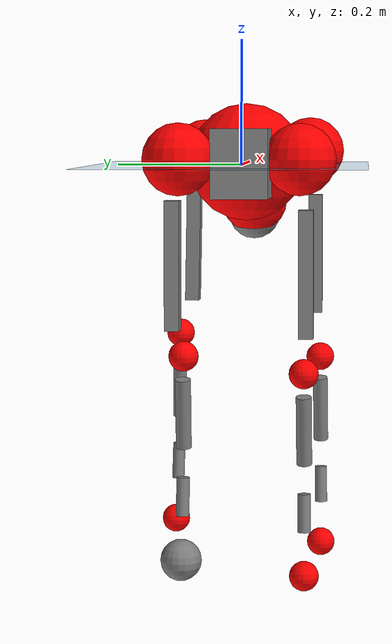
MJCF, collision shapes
<mujoco model="go2">
  <compiler angle="radian" assetdir="assets" balanceinertia="true" inertiafromgeom="false"/>

  <option timestep="0.005" density="1.2" viscosity="2e-05"/>

  <size nkey="1"/>

  <visual>
    <quality shadowsize="8192"/>
    <map shadowclip="0.5"/>
  </visual>

  <default>
    <default class="/">
      <geom contype="0" conaffinity="0" group="1" solref="-1000 -80"/>
      <site size="0.01 0.005 0.005" group="5"/>
      <general forcelimited="true" biastype="affine" gainprm="20" biasprm="0 -20 -0.5"/>
      <default class="go2">
        <joint armature="0.01" damping="0.01" frictionloss="0.2"/>
        <geom condim="1" margin="0.001"/>
        <default class="visual">
          <geom type="mesh" group="2"/>
        </default>
        <default class="collision">
          <geom group="3"/>
          <default class="foot">
            <geom size="0.022 0 0" condim="6" priority="1" friction="0.8 0.02 0.01" solimp="0.015 1 0.022"/>
          </default>
        </default>
        <default class="reward_collision_sphere">
          <geom group="5" rgba="1 0 0 1"/>
        </default>
      </default>
    </default>
  </default>

  <asset>
    <texture type="skybox" colorspace="auto" name="//unnamed_texture_0" builtin="gradient" rgb1="0.95 0.95 0.95" rgb2="0.95 0.95 0.95" width="100" height="600"/>
    <texture type="2d" colorspace="auto" name="texplane" builtin="checker" rgb1="0.345 0.575 0.748" rgb2="0.345 0.575 0.748" markrgb="1 1 1" width="512" height="512"/>
    <material name="MatPlane" class="/" texture="texplane" texuniform="true" texrepeat="2 2" specular="0.9"/>
    <material name="metal" class="/" rgba="0.9 0.95 0.95 1"/>
    <material name="black" class="/" rgba="0 0 0 1"/>
    <material name="white" class="/"/>
    <material name="gray" class="/" rgba="0.671705 0.692426 0.77427 1"/>
    <mesh name="base_0" class="/" file="base_0.obj"/>
    <mesh name="base_1" class="/" file="base_1.obj"/>
    <mesh name="base_2" class="/" file="base_2.obj"/>
    <mesh name="base_3" class="/" file="base_3.obj"/>
    <mesh name="base_4" class="/" file="base_4.obj"/>
    <mesh name="hip_0" class="/" file="hip_0.obj"/>
    <mesh name="hip_1" class="/" file="hip_1.obj"/>
    <mesh name="thigh_0" class="/" file="thigh_0.obj"/>
    <mesh name="thigh_1" class="/" file="thigh_1.obj"/>
    <mesh name="thigh_mirror_0" class="/" file="thigh_mirror_0.obj"/>
    <mesh name="thigh_mirror_1" class="/" file="thigh_mirror_1.obj"/>
    <mesh name="calf_0" class="/" file="calf_0.obj"/>
    <mesh name="calf_1" class="/" file="calf_1.obj"/>
    <mesh name="calf_mirror_0" class="/" file="calf_mirror_0.obj"/>
    <mesh name="calf_mirror_1" class="/" file="calf_mirror_1.obj"/>
    <mesh name="foot" class="/" file="foot.obj"/>
  </asset>

  <worldbody>
    <geom name="floor" class="/" size="100 100 0.125" type="plane" group="0" material="MatPlane"/>
    <light name="toplight_shadow" class="/" pos="0 0 5" dir="0.0990148 0.0990148 -0.990148" type="directional" ambient="0.04 0.04 0.04" diffuse="0.55 0.55 0.55" specular="0.12 0.12 0.12"/>
    <light name="toplight_fill" class="/" pos="0 0 5" dir="0.0990148 0.0990148 -0.990148" type="directional" castshadow="false" ambient="0.04 0.04 0.04" diffuse="0.3 0.3 0.3" specular="0.08 0.08 0.08"/>
    <body name="trunk" childclass="go2" pos="-0.0165554 -0.00980285 0.00483016" quat="0.999993 -0.00280756 0.00262372 -0.000318802">
      <inertial pos="0.0125994 0.0048109 -0.00790324" quat="0.0478993 0.717852 -0.032888 0.693767" mass="5.51932" diaginertia="0.00618988 0.00948823 0.177841"/>
      <joint name="//unnamed_joint_0" type="free" armature="0" damping="0" frictionloss="0"/>
      <geom name="//unnamed_geom_1" class="visual" material="black" mesh="base_0"/>
      <geom name="//unnamed_geom_2" class="visual" material="black" mesh="base_1"/>
      <geom name="//unnamed_geom_3" class="visual" material="black" mesh="base_2"/>
      <geom name="//unnamed_geom_4" class="visual" material="white" mesh="base_3"/>
      <geom name="//unnamed_geom_5" class="visual" material="gray" mesh="base_4"/>
      <geom name="trunk_1" class="collision" size="0.175493 0.0436166 0.0531796" type="box"/>
      <geom name="trunk_2" class="collision" size="0.0466488 0.0419839" pos="0.176295 0 0.0150276" type="cylinder"/>
      <geom name="trunk_3" class="collision" size="0.0438498" pos="0.181244 0 -0.0901657"/>
      <geom name="//unnamed_geom_9" class="reward_collision_sphere" size="0.0932975"/>
      <geom name="//unnamed_geom_10" class="reward_collision_sphere" size="0.0559785" pos="0.173202 0 -0.0676243"/>
      <site name="imu" pos="-0.0567331 0.0302207 0.15394" size="0.00932975"/>
      <camera name="track" pos="0 -1.35517 0" quat="0.707107 0.707107 0 0" mode="trackcom"/>
      <camera name="ego_camera" pos="0.192997 0 0.0676243" quat="-0.5 -0.5 0.5 0.5"/>
      <body name="FL_hip" pos="0.115059 0.0293719 0.0121834" quat="0.999969 0.00661687 0.00245512 -0.00338525">
        <inertial pos="0.0141534 0.0113304 0.00282087" quat="0.504161 0.504345 0.500987 0.490378" mass="0.631084" diaginertia="9.16312e-05 0.000104997 0.00414147"/>
        <joint name="FL_hip_joint" pos="0 0 0" axis="0.99528 -0.07365 -0.0631993" stiffness="0.0835155" range="-0.948875 1.04137" armature="0.0171121" damping="0" frictionloss="0.0833467"/>
        <geom name="//unnamed_geom_11" class="visual" material="metal" mesh="hip_0"/>
        <geom name="//unnamed_geom_12" class="visual" material="gray" mesh="hip_1"/>
        <geom name="//unnamed_geom_13" class="collision" size="0.0429169 0.0186595" pos="0 0.0542069 0" quat="0.707107 0.707107 0 0" type="cylinder"/>
        <geom name="//unnamed_geom_14" class="reward_collision_sphere" size="0.0559785" pos="0 0.047431 0"/>
        <body name="FL_thigh" pos="0.0129612 0.0665809 0.011698" quat="0.999987 0.00444946 0.00256817 -0.000622251">
          <inertial pos="0.0023774 -0.0148481 -0.0305498" quat="0.814899 0.0438915 -0.0406987 0.576504" mass="0.985968" diaginertia="0.000572381 0.0009374 0.00785523"/>
          <joint name="FL_thigh_joint" pos="0 0 0" axis="-0.000130757 0.998327 0.0578183" stiffness="0.0633316" range="-1.77596 3.51178" armature="0.00136654" damping="0.0618444" frictionloss="0.299733"/>
          <geom name="//unnamed_geom_15" class="visual" material="metal" mesh="thigh_0"/>
          <geom name="//unnamed_geom_16" class="visual" material="gray" mesh="thigh_1"/>
          <geom name="//unnamed_geom_17" class="collision" size="0.0993619 0.0114289 0.0158606" pos="0 0 -0.160044" quat="0.707107 0 0.707107 0" type="box"/>
          <body name="FL_calf" pos="-0.0037598 0.0189793 -0.315882" quat="0.999976 0.00455272 -0.000679216 -0.00518848">
            <inertial pos="-0.00704041 0.00713954 -0.210312" quat="0.761556 -0.0145279 0.0349542 0.646992" mass="0.13955" diaginertia="0.000134518 0.000170968 0.000411113"/>
            <joint name="FL_calf_joint" pos="0 0 0" axis="-0.0120916 0.998962 -0.0439163" range="-2.78314 -0.710437" armature="0.00726307" damping="0.0708762" frictionloss="0.137147"/>
            <geom name="//unnamed_geom_18" class="visual" material="gray" mesh="calf_0"/>
            <geom name="//unnamed_geom_19" class="visual" material="black" mesh="calf_1"/>
            <geom name="FL_calf0" class="collision" size="0.0111957 0.0559785" pos="0.00494864 0 -0.0901657" quat="0.994493 0 -0.104807 0" type="cylinder"/>
            <geom name="//unnamed_geom_21" class="collision" size="0.0102627 0.0303217" pos="0.0123716 0 -0.222409" quat="0.999688 0 0.0249974 0" type="cylinder"/>
            <geom name="//unnamed_geom_22" class="visual" pos="0 0 -0.320088" quat="1 0 0 0" material="black" mesh="foot"/>
            <geom name="FL_foot" class="foot" size="0.00985771" pos="-0.00123716 0 -0.320088"/>
            <geom name="//unnamed_geom_24" class="reward_collision_sphere" size="0.0233244"/>
            <geom name="//unnamed_geom_25" class="reward_collision_sphere" size="0.0233244" pos="-0.00123716 0 -0.320088"/>
            <site name="FL_foot" class="foot" pos="-0.00123716 0 -0.320088" size="0.00932975"/>
          </body>
        </body>
      </body>
      <body name="FR_hip" pos="0.138341 -0.0497482 0.0153077" quat="0.999998 0.0004024 -0.000540408 0.00208153">
        <inertial pos="-0.0216599 -0.00946852 0.0169289" quat="0.543325 0.500593 0.455474 0.496737" mass="0.395161" diaginertia="6.57965e-05 7.70934e-05 0.00285746"/>
        <joint name="FR_hip_joint" pos="0 0 0" axis="0.99667 0.0595123 -0.0557508" range="-0.701066 0.929834" armature="0.0089022" damping="0" frictionloss="0.332165"/>
        <geom name="//unnamed_geom_26" class="visual" pos="0 -7.18859e-09 -3.08333e-07" quat="4.63268e-05 1 0 0" material="metal" mesh="hip_0"/>
        <geom name="//unnamed_geom_27" class="visual" pos="0 -1.16536e-08 7.62626e-07" quat="4.63268e-05 1 0 0" material="gray" mesh="hip_1"/>
        <geom name="//unnamed_geom_28" class="collision" size="0.0429169 0.0186595" pos="0 -0.0542069 0" quat="0.707107 0.707107 0 0" type="cylinder"/>
        <geom name="//unnamed_geom_29" class="reward_collision_sphere" size="0.0559785" pos="0 -0.047431 0"/>
        <body name="FR_thigh" pos="0.00237509 -0.0561639 -0.0122962" quat="0.999999 0.000327617 -0.000311786 -0.00130015">
          <inertial pos="0.00906911 -0.00437659 -0.0572752" quat="0.556788 -0.0216471 0.0786512 0.826639" mass="0.834873" diaginertia="0.000524262 0.000680869 0.00604538"/>
          <joint name="FR_thigh_joint" pos="0 0 0" axis="-0.0403694 -0.998946 0.0218572" range="-3.37458 1.34593" armature="0.013611" damping="0.0727515" frictionloss="0.121833"/>
          <geom name="//unnamed_geom_30" class="visual" material="metal" mesh="thigh_mirror_0"/>
          <geom name="//unnamed_geom_31" class="visual" material="gray" mesh="thigh_mirror_1"/>
          <geom name="//unnamed_geom_32" class="collision" size="0.0993619 0.0114289 0.0158606" pos="0 0 -0.160044" quat="0.707107 0 0.707107 0" type="box"/>
          <body name="FR_calf" pos="0.00194766 -0.00842888 -0.335869" quat="0.999958 -0.00278896 0.00673441 -0.00563043">
            <inertial pos="-0.0157132 0.0135202 -0.228101" quat="0.726927 -0.00137922 0.00386229 0.686702" mass="0.252788" diaginertia="0.000124923 0.000180476 0.000337966"/>
            <joint name="FR_calf_joint" pos="0 0 0" axis="0.040469 -0.999078 0.0143631" range="1.18968 2.81685" armature="0.00619686" damping="0" frictionloss="0.034293"/>
            <geom name="//unnamed_geom_33" class="visual" material="gray" mesh="calf_mirror_0"/>
            <geom name="//unnamed_geom_34" class="visual" material="black" mesh="calf_mirror_1"/>
            <geom name="FR_calf0" class="collision" size="0.0121287 0.0559785" pos="0.00618579 0 -0.0901657" quat="0.995004 0 -0.0998334 0" type="cylinder"/>
            <geom name="//unnamed_geom_36" class="collision" size="0.0102627 0.0303217" pos="0.0123716 0 -0.222409" quat="0.999688 0 0.0249974 0" type="cylinder"/>
            <geom name="//unnamed_geom_37" class="visual" pos="0 0 -0.320088" quat="1 0 0 0" material="black" mesh="foot"/>
            <geom name="FR_foot" class="foot" size="0.0203154" pos="-0.00123716 0 -0.320088"/>
            <geom name="//unnamed_geom_39" class="reward_collision_sphere" size="0.0233244"/>
            <geom name="//unnamed_geom_40" class="reward_collision_sphere" size="0.0233244" pos="-0.00123716 0 -0.320088"/>
            <site name="FR_foot" class="foot" pos="-0.00123716 0 -0.320088" size="0.00932975"/>
          </body>
        </body>
      </body>
      <body name="RL_hip" pos="-0.139506 0.0477813 0.00683617" quat="0.999991 0.00108304 -0.000810505 0.00398686">
        <inertial pos="-0.0143615 0.0205899 -0.00232299" quat="0.4726 0.56482 0.487166 0.469358" mass="0.645973" diaginertia="9.08942e-05 8.58656e-05 0.00454723"/>
        <joint name="RL_hip_joint" pos="0 0 0" axis="-0.998621 0.0516141 0.00955603" range="-1.3202 0.852841" armature="0.008973" damping="0.00547673" frictionloss="0.272388"/>
        <geom name="//unnamed_geom_41" class="visual" pos="7.70263e-09 0 1.50989e-06" quat="4.63268e-05 0 1 0" material="metal" mesh="hip_0"/>
        <geom name="//unnamed_geom_42" class="visual" pos="1.24869e-08 0 1.33906e-06" quat="4.63268e-05 0 1 0" material="gray" mesh="hip_1"/>
        <geom name="//unnamed_geom_43" class="collision" size="0.0429169 0.0186595" pos="0 0.0542069 0" quat="0.707107 0.707107 0 0" type="cylinder"/>
        <geom name="//unnamed_geom_44" class="reward_collision_sphere" size="0.0559785" pos="0 0.047431 0"/>
        <body name="RL_thigh" pos="-0.0117991 0.0550222 -0.00137623" quat="0.999989 0.00189608 -0.0014313 -0.00413498">
          <inertial pos="-0.00957777 -0.0331496 -0.0535565" quat="0.78733 0.0791126 -0.0286576 0.610763" mass="0.701669" diaginertia="0.000519082 0.000648812 0.00687254"/>
          <joint name="RL_thigh_joint" pos="0 0 0" axis="0.0840401 0.996407 -0.0104864" stiffness="0.070096" range="-0.796279 4.28121" armature="0.00177146" damping="0" frictionloss="0.0401751"/>
          <geom name="//unnamed_geom_45" class="visual" material="metal" mesh="thigh_0"/>
          <geom name="//unnamed_geom_46" class="visual" material="gray" mesh="thigh_1"/>
          <geom name="//unnamed_geom_47" class="collision" size="0.0993619 0.0114289 0.0158606" pos="0 0 -0.160044" quat="0.707107 0 0.707107 0" type="box"/>
          <body name="RL_calf" pos="0.0127315 -0.015295 -0.301377" quat="0.999955 0.0061221 0.00501442 -0.00517276">
            <inertial pos="-0.00146389 0.000517691 -0.232245" quat="0.740846 -0.00775 0.032731 0.670832" mass="0.229574" diaginertia="0.000136413 0.000228854 0.000375278"/>
            <joint name="RL_calf_joint" pos="0 0 0" axis="-0.042817 0.998798 -0.0238701" stiffness="0.0537623" range="-2.87726 -0.579304" armature="0.00601161" damping="0" frictionloss="0.324748"/>
            <geom name="//unnamed_geom_48" class="visual" material="gray" mesh="calf_0"/>
            <geom name="//unnamed_geom_49" class="visual" material="black" mesh="calf_1"/>
            <geom name="RL_calf0" class="collision" size="0.0121287 0.0559785" pos="0.00618579 0 -0.0901657" quat="0.995004 0 -0.0998334 0" type="cylinder"/>
            <geom name="//unnamed_geom_51" class="collision" size="0.0102627 0.0303217" pos="0.0123716 0 -0.222409" quat="0.999688 0 0.0249974 0" type="cylinder"/>
            <geom name="//unnamed_geom_52" class="visual" pos="0 0 -0.320088" quat="1 0 0 0" material="black" mesh="foot"/>
            <geom name="RL_foot" class="foot" size="0.032292" pos="-0.00123716 0 -0.320088"/>
            <geom name="//unnamed_geom_54" class="reward_collision_sphere" size="0.0233244"/>
            <geom name="//unnamed_geom_55" class="reward_collision_sphere" size="0.0233244" pos="-0.00123716 0 -0.320088"/>
            <site name="RL_foot" class="foot" pos="-0.00123716 0 -0.320088" size="0.00932975"/>
          </body>
        </body>
      </body>
      <body name="RR_hip" pos="-0.101877 -0.0417213 0.00563127" quat="0.999989 0.00414122 -0.00026287 -0.00208767">
        <inertial pos="-0.0107412 -0.0129191 -0.00253761" quat="0.437766 0.47522 0.513447 0.564712" mass="0.588527" diaginertia="7.365e-05 7.71805e-05 0.00335383"/>
        <joint name="RR_hip_joint" pos="0 0 0" axis="-0.995812 0.0335066 -0.0850686" stiffness="0.0324398" range="-1.08155 0.868936" armature="0.0143599" damping="0" frictionloss="0.15372"/>
        <geom name="//unnamed_geom_56" class="visual" pos="-7.70058e-09 -7.18859e-09 1.81823e-06" quat="2.14617e-09 4.63268e-05 4.63268e-05 -1" material="metal" mesh="hip_0"/>
        <geom name="//unnamed_geom_57" class="visual" pos="-1.24919e-08 -1.16536e-08 5.76433e-07" quat="2.14617e-09 4.63268e-05 4.63268e-05 -1" material="gray" mesh="hip_1"/>
        <geom name="//unnamed_geom_58" class="collision" size="0.0429169 0.0186595" pos="0 -0.0542069 0" quat="0.707107 0.707107 0 0" type="cylinder"/>
        <geom name="//unnamed_geom_59" class="reward_collision_sphere" size="0.0559785" pos="0 -0.047431 0"/>
        <body name="RR_thigh" pos="-0.0055961 -0.0568165 -0.0165234" quat="0.999988 -0.00454208 0.0007321 0.001406">
          <inertial pos="-0.0102214 0.0196433 -0.057723" quat="0.532958 -0.043316 0.175224 0.826666" mass="0.986558" diaginertia="0.000544943 0.000646772 0.00492065"/>
          <joint name="RR_thigh_joint" pos="0 0 0" axis="0.0137279 -0.999203 -0.0374729" stiffness="0.0694381" range="-4.60264 0.337519" armature="0.00281508" damping="0.0827668" frictionloss="0.291139"/>
          <geom name="//unnamed_geom_60" class="visual" material="metal" mesh="thigh_mirror_0"/>
          <geom name="//unnamed_geom_61" class="visual" material="gray" mesh="thigh_mirror_1"/>
          <geom name="//unnamed_geom_62" class="collision" size="0.0993619 0.0114289 0.0158606" pos="0 0 -0.160044" quat="0.707107 0 0.707107 0" type="box"/>
          <body name="RR_calf" pos="-0.00120136 0.00353963 -0.315029" quat="0.999999 2.33378e-05 0.000348774 -0.00150923">
            <inertial pos="0.0202799 0.0188963 -0.230139" quat="0.691225 -0.0139868 0.0136963 0.722375" mass="0.167997" diaginertia="0.00016791 0.000178304 0.000423645"/>
            <joint name="RR_calf_joint" pos="0 0 0" axis="0.00923422 -0.999062 -0.0422977" stiffness="0.0318228" range="1.02471 2.36972" armature="0.00859504" damping="0" frictionloss="0.0196224"/>
            <geom name="//unnamed_geom_63" class="visual" material="gray" mesh="calf_mirror_0"/>
            <geom name="//unnamed_geom_64" class="visual" material="black" mesh="calf_mirror_1"/>
            <geom name="RR_calf0" class="collision" size="0.0121287 0.0559785" pos="0.00618579 0 -0.0901657" quat="0.995004 0 -0.0998334 0" type="cylinder"/>
            <geom name="//unnamed_geom_66" class="collision" size="0.0102627 0.0303217" pos="0.0123716 0 -0.222409" quat="0.999688 0 0.0249974 0" type="cylinder"/>
            <geom name="//unnamed_geom_67" class="visual" pos="0 0 -0.320088" quat="1 0 0 0" material="black" mesh="foot"/>
            <geom name="RR_foot" class="foot" size="0.00715428" pos="-0.00123716 0 -0.320088"/>
            <geom name="//unnamed_geom_69" class="reward_collision_sphere" size="0.0233244"/>
            <geom name="//unnamed_geom_70" class="reward_collision_sphere" size="0.0233244" pos="-0.00123716 0 -0.320088"/>
            <site name="RR_foot" class="foot" pos="-0.00123716 0 -0.320088" size="0.00932975"/>
          </body>
        </body>
      </body>
    </body>
  </worldbody>

  <contact>
    <pair class="/" geom1="floor" geom2="FL_foot" name="//unnamed_contact_0"/>
    <pair class="/" geom1="floor" geom2="FR_foot" name="//unnamed_contact_1"/>
    <pair class="/" geom1="floor" geom2="RL_foot" name="//unnamed_contact_2"/>
    <pair class="/" geom1="floor" geom2="RR_foot" name="//unnamed_contact_3"/>
  </contact>

  <actuator>
    <general name="FL_hip" class="/" joint="FL_hip_joint" forcerange="-21.6944 21.6944" gainprm="17.805" biasprm="0 -17.805 -0.364795"/>
    <general name="FL_thigh" class="/" joint="FL_thigh_joint" forcerange="-35.0976 35.0976" gainprm="17.805" biasprm="0 -17.805 -0.364795"/>
    <general name="FL_calf" class="/" joint="FL_calf_joint" forcerange="-26.0716 26.0716" gainprm="17.805" biasprm="0 -17.805 -0.364795"/>
    <general name="FR_hip" class="/" joint="FR_hip_joint" forcerange="-21.0609 21.0609" gainprm="17.805" biasprm="0 -17.805 -0.364795"/>
    <general name="FR_thigh" class="/" joint="FR_thigh_joint" forcerange="-17.3039 17.3039" gainprm="17.805" biasprm="0 -17.805 -0.364795"/>
    <general name="FR_calf" class="/" joint="FR_calf_joint" forcerange="-22.7002 22.7002" gainprm="17.805" biasprm="0 -17.805 -0.364795"/>
    <general name="RL_hip" class="/" joint="RL_hip_joint" forcerange="-21.2376 21.2376" gainprm="17.805" biasprm="0 -17.805 -0.364795"/>
    <general name="RL_thigh" class="/" joint="RL_thigh_joint" forcerange="-11.5521 11.5521" gainprm="17.805" biasprm="0 -17.805 -0.364795"/>
    <general name="RL_calf" class="/" joint="RL_calf_joint" forcerange="-61.3953 61.3953" gainprm="17.805" biasprm="0 -17.805 -0.364795"/>
    <general name="RR_hip" class="/" joint="RR_hip_joint" forcerange="-25.9198 25.9198" gainprm="17.805" biasprm="0 -17.805 -0.364795"/>
    <general name="RR_thigh" class="/" joint="RR_thigh_joint" forcerange="-14.9186 14.9186" gainprm="17.805" biasprm="0 -17.805 -0.364795"/>
    <general name="RR_calf" class="/" joint="RR_calf_joint" forcerange="-72.464 72.464" gainprm="17.805" biasprm="0 -17.805 -0.364795"/>
  </actuator>

  <sensor>
    <gyro site="imu" name="imu_angular_velocity"/>
    <velocimeter site="imu" name="imu_linear_velocity"/>
    <framelinvel objtype="site" objname="FL_foot" name="FL_foot_global_linear_velocity"/>
    <framelinvel objtype="site" objname="FR_foot" name="FR_foot_global_linear_velocity"/>
    <framelinvel objtype="site" objname="RL_foot" name="RL_foot_global_linear_velocity"/>
    <framelinvel objtype="site" objname="RR_foot" name="RR_foot_global_linear_velocity"/>
  </sensor>

  <keyframe>
    <key name="home" qpos="0 0 0.325 1 0 0 0 0.1 0.8 -1.5 -0.1 -0.8 1.5 -0.1 0.8 -1.5 0.1 -0.8 1.5"/>
  </keyframe>
</mujoco>
